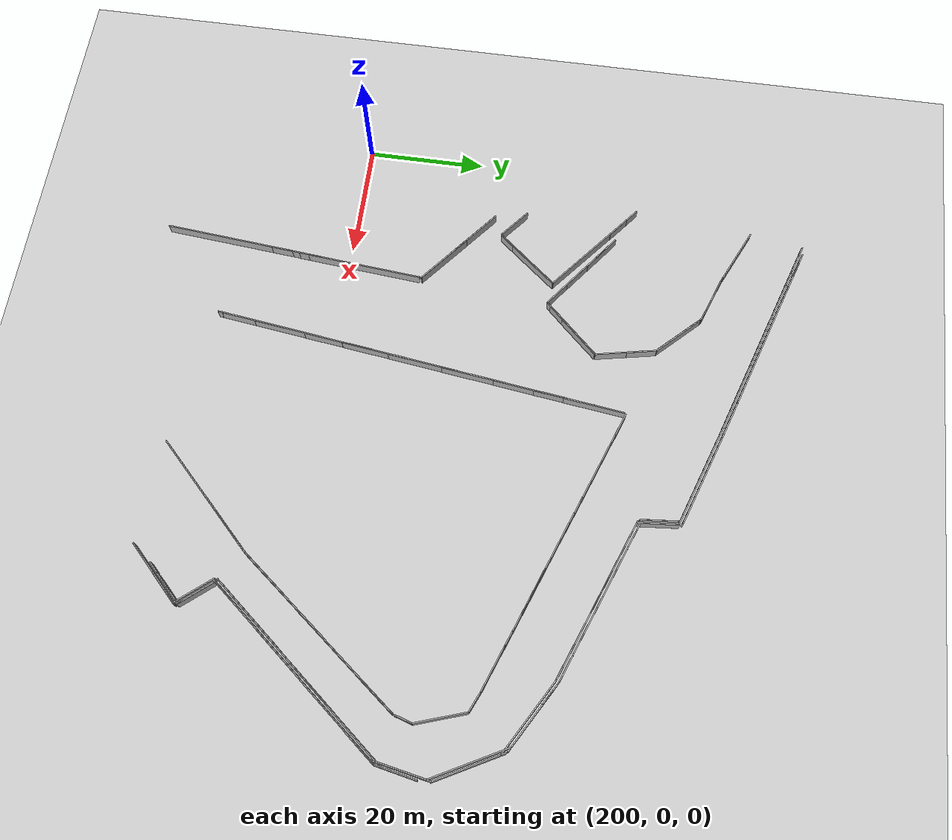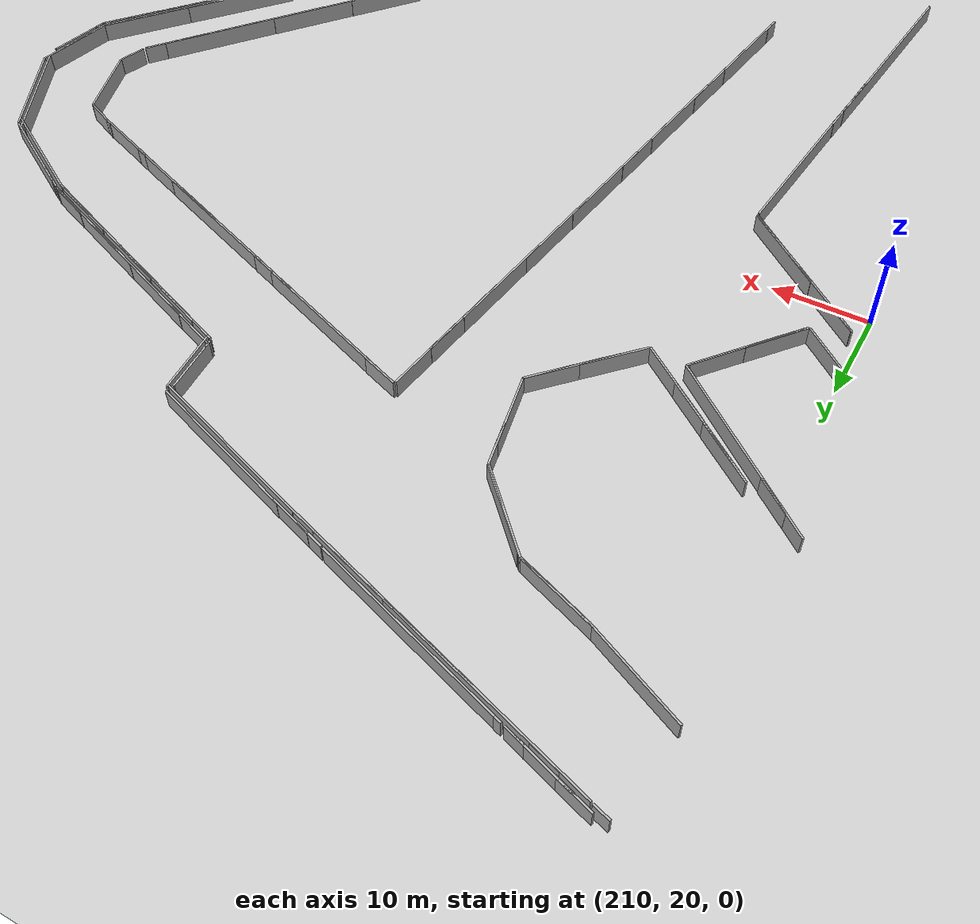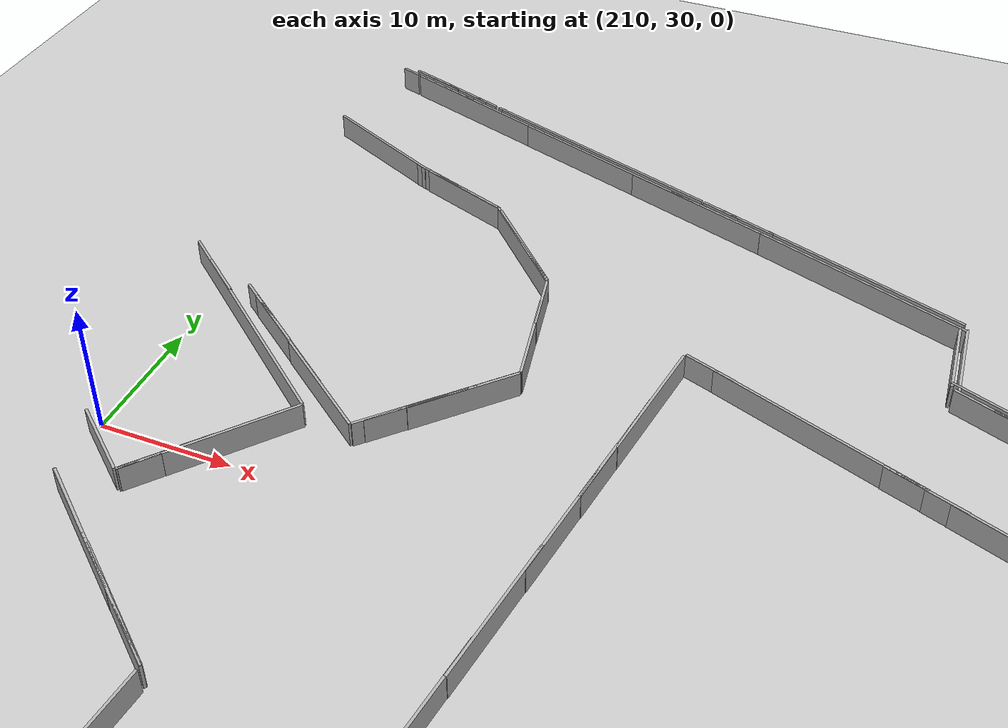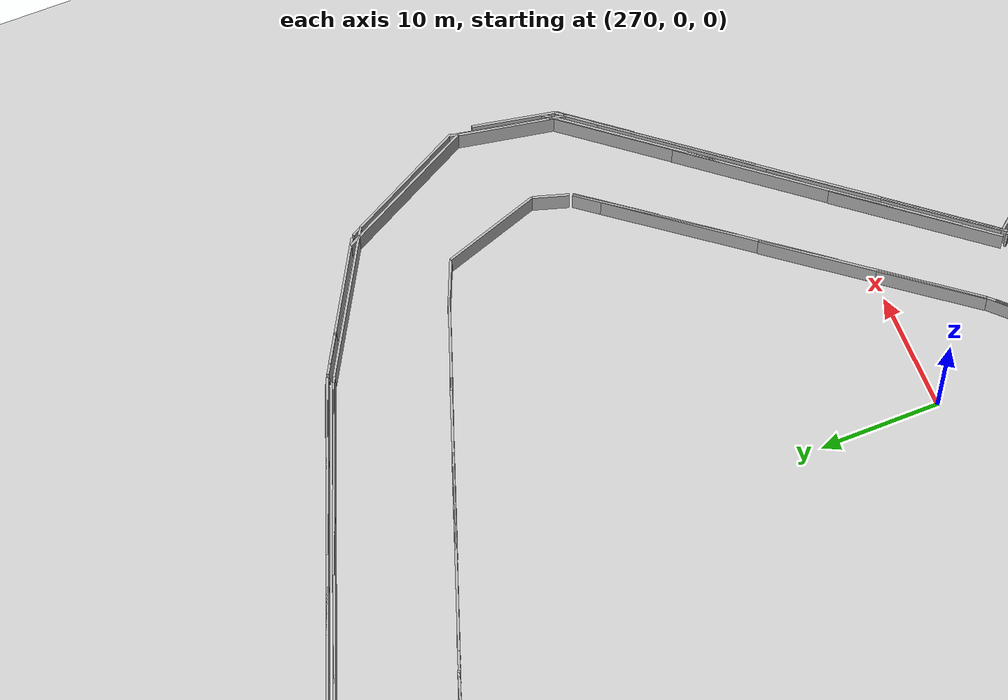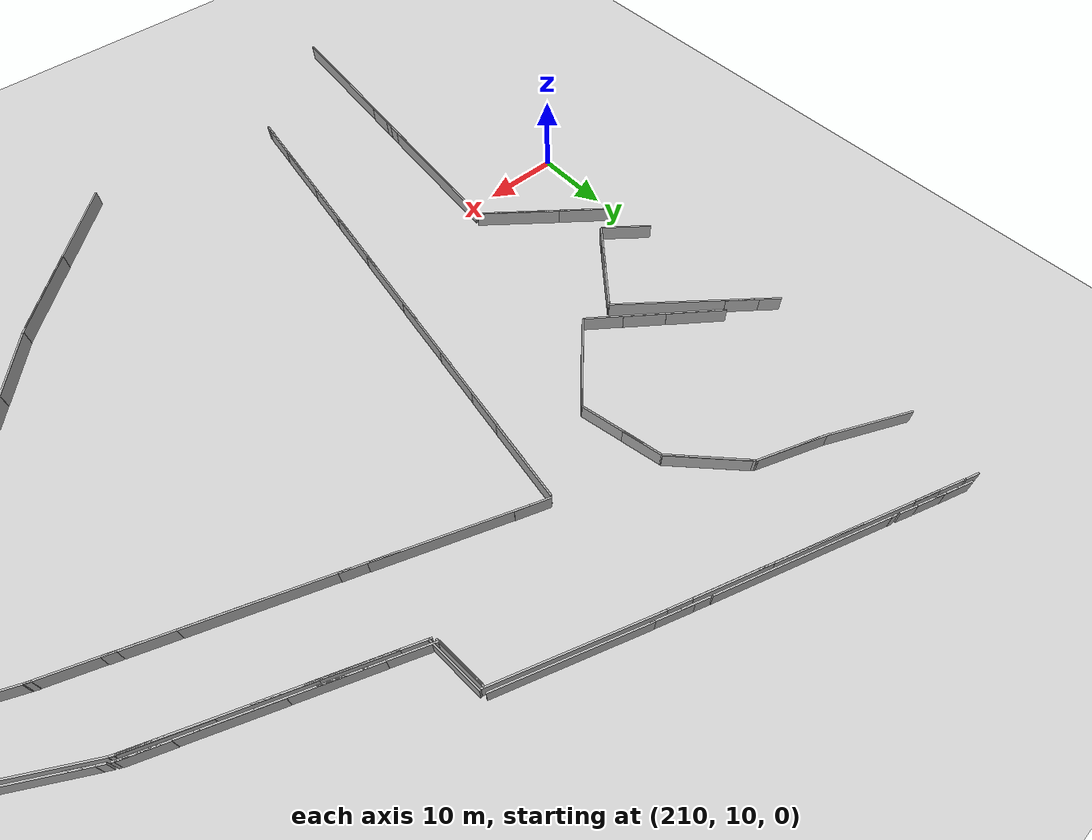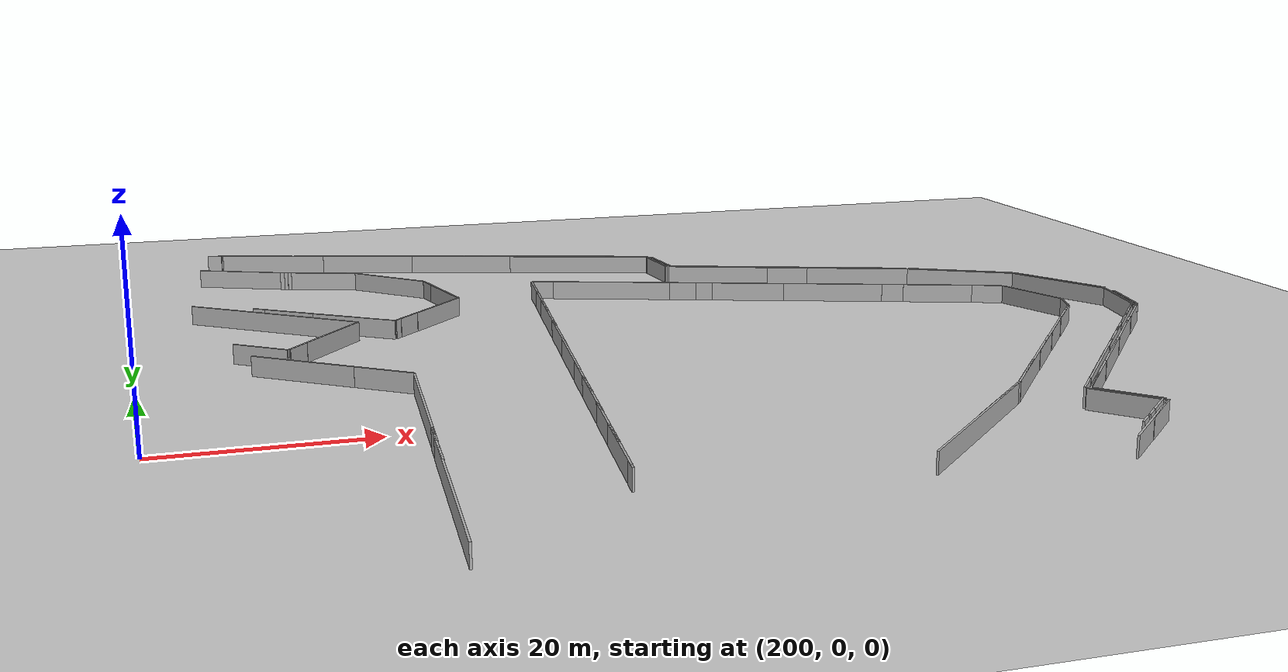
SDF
<sdf version="1.7">
 <world name="slam_world">
  <model name="ground_plane">
   <static>1</static>
   <link name="link">
    <collision name="collision">
     <geometry><plane><normal>0 0 1</normal><size>100 100</size></plane></geometry>
    </collision>
    <visual name="visual">
     <geometry><plane><normal>0 0 1</normal><size>100 100</size></plane></geometry>
     <material>
      <ambient>0.8 0.8 0.8 1</ambient>
      <diffuse>0.8 0.8 0.8 1</diffuse>
      <specular>0.8 0.8 0.8 1</specular>
     </material>
    </visual>
   </link>
  </model>
  <model name="wall_15">
   <static>1</static>
   <pose>253.476 62.9 1 0 0 -0.331017</pose>
   <link name="link">
    <collision name="collision"><geometry><box><size>18.7689 0.2 2</size></box></geometry></collision>
    <visual name="visual">
     <geometry><box><size>18.7689 0.2 2</size></box></geometry>
     <material><ambient>0.5 0.5 0.5 1</ambient><diffuse>0.7 0.7 0.7 1</diffuse></material>
    </visual>
   </link>
  </model>
  <model name="wall_22">
   <static>1</static>
   <pose>267.626 -15.625 1 0 -0 0.785398</pose>
   <link name="link">
    <collision name="collision"><geometry><box><size>22.8395 0.2 2</size></box></geometry></collision>
    <visual name="visual">
     <geometry><box><size>22.8395 0.2 2</size></box></geometry>
     <material><ambient>0.5 0.5 0.5 1</ambient><diffuse>0.7 0.7 0.7 1</diffuse></material>
    </visual>
   </link>
  </model>
  <model name="wall_27">
   <static>1</static>
   <pose>298.151 10.8 1 0 -0 0.889595</pose>
   <link name="link">
    <collision name="collision"><geometry><box><size>21.7555 0.2 2</size></box></geometry></collision>
    <visual name="visual">
     <geometry><box><size>21.7555 0.2 2</size></box></geometry>
     <material><ambient>0.5 0.5 0.5 1</ambient><diffuse>0.7 0.7 0.7 1</diffuse></material>
    </visual>
   </link>
  </model>
  <model name="wall_38">
   <static>1</static>
   <pose>214.651 41.75 1 0 0 -0.682317</pose>
   <link name="link">
    <collision name="collision"><geometry><box><size>20.6155 0.2 2</size></box></geometry></collision>
    <visual name="visual">
     <geometry><box><size>20.6155 0.2 2</size></box></geometry>
     <material><ambient>0.5 0.5 0.5 1</ambient><diffuse>0.7 0.7 0.7 1</diffuse></material>
    </visual>
   </link>
  </model>
  <model name="wall_39">
   <static>1</static>
   <pose>281.976 0.35 1 0 -0 0.905735</pose>
   <link name="link">
    <collision name="collision"><geometry><box><size>18.5543 0.2 2</size></box></geometry></collision>
    <visual name="visual">
     <geometry><box><size>18.5543 0.2 2</size></box></geometry>
     <material><ambient>0.5 0.5 0.5 1</ambient><diffuse>0.7 0.7 0.7 1</diffuse></material>
    </visual>
   </link>
  </model>
  <model name="wall_40">
   <static>1</static>
   <pose>230.551 71.075 1 0 0 -0.316411</pose>
   <link name="link">
    <collision name="collision"><geometry><box><size>20.729 0.2 2</size></box></geometry></collision>
    <visual name="visual">
     <geometry><box><size>20.729 0.2 2</size></box></geometry>
     <material><ambient>0.5 0.5 0.5 1</ambient><diffuse>0.7 0.7 0.7 1</diffuse></material>
    </visual>
   </link>
  </model>
  <model name="wall_52">
   <static>1</static>
   <pose>254.151 63.225 1 0 0 -0.330217</pose>
   <link name="link">
    <collision name="collision"><geometry><box><size>16.8081 0.2 2</size></box></geometry></collision>
    <visual name="visual">
     <geometry><box><size>16.8081 0.2 2</size></box></geometry>
     <material><ambient>0.5 0.5 0.5 1</ambient><diffuse>0.7 0.7 0.7 1</diffuse></material>
    </visual>
   </link>
  </model>
  <model name="wall_55">
   <static>1</static>
   <pose>295.276 6.475 1 0 -0 0.888581</pose>
   <link name="link">
    <collision name="collision"><geometry><box><size>24.028 0.2 2</size></box></geometry></collision>
    <visual name="visual">
     <geometry><box><size>24.028 0.2 2</size></box></geometry>
     <material><ambient>0.5 0.5 0.5 1</ambient><diffuse>0.7 0.7 0.7 1</diffuse></material>
    </visual>
   </link>
  </model>
  <model name="wall_60">
   <static>1</static>
   <pose>221.651 -20.05 1 0 -0 1.4816</pose>
   <link name="link">
    <collision name="collision"><geometry><box><size>24.6982 0.2 2</size></box></geometry></collision>
    <visual name="visual">
     <geometry><box><size>24.6982 0.2 2</size></box></geometry>
     <material><ambient>0.5 0.5 0.5 1</ambient><diffuse>0.7 0.7 0.7 1</diffuse></material>
    </visual>
   </link>
  </model>
  <model name="wall_65">
   <static>1</static>
   <pose>280.926 46.4 1 0 0 -0.366185</pose>
   <link name="link">
    <collision name="collision"><geometry><box><size>18.1536 0.2 2</size></box></geometry></collision>
    <visual name="visual">
     <geometry><box><size>18.1536 0.2 2</size></box></geometry>
     <material><ambient>0.5 0.5 0.5 1</ambient><diffuse>0.7 0.7 0.7 1</diffuse></material>
    </visual>
   </link>
  </model>
  <model name="wall_67">
   <static>1</static>
   <pose>222.651 73.15 1 0 0 -0.31621</pose>
   <link name="link">
    <collision name="collision"><geometry><box><size>22.832 0.2 2</size></box></geometry></collision>
    <visual name="visual">
     <geometry><box><size>22.832 0.2 2</size></box></geometry>
     <material><ambient>0.5 0.5 0.5 1</ambient><diffuse>0.7 0.7 0.7 1</diffuse></material>
    </visual>
   </link>
  </model>
  <model name="wall_76">
   <static>1</static>
   <pose>287.201 -3.425 1 0 -0 0.889813</pose>
   <link name="link">
    <collision name="collision"><geometry><box><size>20.0141 0.2 2</size></box></geometry></collision>
    <visual name="visual">
     <geometry><box><size>20.0141 0.2 2</size></box></geometry>
     <material><ambient>0.5 0.5 0.5 1</ambient><diffuse>0.7 0.7 0.7 1</diffuse></material>
    </visual>
   </link>
  </model>
  <model name="wall_82">
   <static>1</static>
   <pose>223.726 2.675 1 0 -0 1.48197</pose>
   <link name="link">
    <collision name="collision"><geometry><box><size>19.7278 0.2 2</size></box></geometry></collision>
    <visual name="visual">
     <geometry><box><size>19.7278 0.2 2</size></box></geometry>
     <material><ambient>0.5 0.5 0.5 1</ambient><diffuse>0.7 0.7 0.7 1</diffuse></material>
    </visual>
   </link>
  </model>
  <model name="wall_84">
   <static>1</static>
   <pose>254.951 46.15 1 0 0 -0.351817</pose>
   <link name="link">
    <collision name="collision"><geometry><box><size>16.8309 0.2 2</size></box></geometry></collision>
    <visual name="visual">
     <geometry><box><size>16.8309 0.2 2</size></box></geometry>
     <material><ambient>0.5 0.5 0.5 1</ambient><diffuse>0.7 0.7 0.7 1</diffuse></material>
    </visual>
   </link>
  </model>
  <model name="wall_90">
   <static>1</static>
   <pose>303.276 32 1 0 0 -1.08108</pose>
   <link name="link">
    <collision name="collision"><geometry><box><size>12.0118 0.2 2</size></box></geometry></collision>
    <visual name="visual">
     <geometry><box><size>12.0118 0.2 2</size></box></geometry>
     <material><ambient>0.5 0.5 0.5 1</ambient><diffuse>0.7 0.7 0.7 1</diffuse></material>
    </visual>
   </link>
  </model>
  <model name="wall_96">
   <static>1</static>
   <pose>218.326 40.925 1 0 0 -0.648109</pose>
   <link name="link">
    <collision name="collision"><geometry><box><size>10.8501 0.2 2</size></box></geometry></collision>
    <visual name="visual">
     <geometry><box><size>10.8501 0.2 2</size></box></geometry>
     <material><ambient>0.5 0.5 0.5 1</ambient><diffuse>0.7 0.7 0.7 1</diffuse></material>
    </visual>
   </link>
  </model>
  <model name="wall_103">
   <static>1</static>
   <pose>272.051 39.825 1 0 0 -0.351636</pose>
   <link name="link">
    <collision name="collision"><geometry><box><size>16.4037 0.2 2</size></box></geometry></collision>
    <visual name="visual">
     <geometry><box><size>16.4037 0.2 2</size></box></geometry>
     <material><ambient>0.5 0.5 0.5 1</ambient><diffuse>0.7 0.7 0.7 1</diffuse></material>
    </visual>
   </link>
  </model>
  <model name="wall_104">
   <static>1</static>
   <pose>282.451 46.375 1 0 0 -0.365018</pose>
   <link name="link">
    <collision name="collision"><geometry><box><size>14.9874 0.2 2</size></box></geometry></collision>
    <visual name="visual">
     <geometry><box><size>14.9874 0.2 2</size></box></geometry>
     <material><ambient>0.5 0.5 0.5 1</ambient><diffuse>0.7 0.7 0.7 1</diffuse></material>
    </visual>
   </link>
  </model>
  <model name="wall_106">
   <static>1</static>
   <pose>217.801 18.35 1 0 0 -0.680941</pose>
   <link name="link">
    <collision name="collision"><geometry><box><size>17.6324 0.2 2</size></box></geometry></collision>
    <visual name="visual">
     <geometry><box><size>17.6324 0.2 2</size></box></geometry>
     <material><ambient>0.5 0.5 0.5 1</ambient><diffuse>0.7 0.7 0.7 1</diffuse></material>
    </visual>
   </link>
  </model>
  <model name="wall_119">
   <static>1</static>
   <pose>289.751 10.2 1 0 -0 0.905694</pose>
   <link name="link">
    <collision name="collision"><geometry><box><size>19.4445 0.2 2</size></box></geometry></collision>
    <visual name="visual">
     <geometry><box><size>19.4445 0.2 2</size></box></geometry>
     <material><ambient>0.5 0.5 0.5 1</ambient><diffuse>0.7 0.7 0.7 1</diffuse></material>
    </visual>
   </link>
  </model>
  <model name="wall_125">
   <static>1</static>
   <pose>267.651 51.975 1 0 0 -0.364959</pose>
   <link name="link">
    <collision name="collision"><geometry><box><size>11.3474 0.2 2</size></box></geometry></collision>
    <visual name="visual">
     <geometry><box><size>11.3474 0.2 2</size></box></geometry>
     <material><ambient>0.5 0.5 0.5 1</ambient><diffuse>0.7 0.7 0.7 1</diffuse></material>
    </visual>
   </link>
  </model>
  <model name="wall_129">
   <static>1</static>
   <pose>244.051 44.55 1 0 -0 1.44525</pose>
   <link name="link">
    <collision name="collision"><geometry><box><size>10.3817 0.2 2</size></box></geometry></collision>
    <visual name="visual">
     <geometry><box><size>10.3817 0.2 2</size></box></geometry>
     <material><ambient>0.5 0.5 0.5 1</ambient><diffuse>0.7 0.7 0.7 1</diffuse></material>
    </visual>
   </link>
  </model>
  <model name="wall_136">
   <static>1</static>
   <pose>285.226 -5.025 1 0 -0 0.888986</pose>
   <link name="link">
    <collision name="collision"><geometry><box><size>14.3605 0.2 2</size></box></geometry></collision>
    <visual name="visual">
     <geometry><box><size>14.3605 0.2 2</size></box></geometry>
     <material><ambient>0.5 0.5 0.5 1</ambient><diffuse>0.7 0.7 0.7 1</diffuse></material>
    </visual>
   </link>
  </model>
  <model name="wall_146">
   <static>1</static>
   <pose>295.401 40.275 1 0 0 -0.522984</pose>
   <link name="link">
    <collision name="collision"><geometry><box><size>11.3121 0.2 2</size></box></geometry></collision>
    <visual name="visual">
     <geometry><box><size>11.3121 0.2 2</size></box></geometry>
     <material><ambient>0.5 0.5 0.5 1</ambient><diffuse>0.7 0.7 0.7 1</diffuse></material>
    </visual>
   </link>
  </model>
  <model name="wall_161">
   <static>1</static>
   <pose>275.001 49.2 1 0 0 -0.364239</pose>
   <link name="link">
    <collision name="collision"><geometry><box><size>17.1234 0.2 2</size></box></geometry></collision>
    <visual name="visual">
     <geometry><box><size>17.1234 0.2 2</size></box></geometry>
     <material><ambient>0.5 0.5 0.5 1</ambient><diffuse>0.7 0.7 0.7 1</diffuse></material>
    </visual>
   </link>
  </model>
  <model name="wall_165">
   <static>1</static>
   <pose>302.726 32 1 0 0 -1.0833</pose>
   <link name="link">
    <collision name="collision"><geometry><box><size>13.1295 0.2 2</size></box></geometry></collision>
    <visual name="visual">
     <geometry><box><size>13.1295 0.2 2</size></box></geometry>
     <material><ambient>0.5 0.5 0.5 1</ambient><diffuse>0.7 0.7 0.7 1</diffuse></material>
    </visual>
   </link>
  </model>
  <model name="wall_175">
   <static>1</static>
   <pose>271.926 -11.275 1 0 -0 0.785398</pose>
   <link name="link">
    <collision name="collision"><geometry><box><size>12.0915 0.2 2</size></box></geometry></collision>
    <visual name="visual">
     <geometry><box><size>12.0915 0.2 2</size></box></geometry>
     <material><ambient>0.5 0.5 0.5 1</ambient><diffuse>0.7 0.7 0.7 1</diffuse></material>
    </visual>
   </link>
  </model>
  <model name="wall_178">
   <static>1</static>
   <pose>242.626 33.625 1 0 -0 1.44494</pose>
   <link name="link">
    <collision name="collision"><geometry><box><size>12.3477 0.2 2</size></box></geometry></collision>
    <visual name="visual">
     <geometry><box><size>12.3477 0.2 2</size></box></geometry>
     <material><ambient>0.5 0.5 0.5 1</ambient><diffuse>0.7 0.7 0.7 1</diffuse></material>
    </visual>
   </link>
  </model>
  <model name="wall_183">
   <static>1</static>
   <pose>241.401 24.225 1 0 -0 1.44477</pose>
   <link name="link">
    <collision name="collision"><geometry><box><size>11.1383 0.2 2</size></box></geometry></collision>
    <visual name="visual">
     <geometry><box><size>11.1383 0.2 2</size></box></geometry>
     <material><ambient>0.5 0.5 0.5 1</ambient><diffuse>0.7 0.7 0.7 1</diffuse></material>
    </visual>
   </link>
  </model>
  <model name="wall_185">
   <static>1</static>
   <pose>281.201 -20.6 1 0 -0 0.785398</pose>
   <link name="link">
    <collision name="collision"><geometry><box><size>12.1622 0.2 2</size></box></geometry></collision>
    <visual name="visual">
     <geometry><box><size>12.1622 0.2 2</size></box></geometry>
     <material><ambient>0.5 0.5 0.5 1</ambient><diffuse>0.7 0.7 0.7 1</diffuse></material>
    </visual>
   </link>
  </model>
  <model name="wall_193">
   <static>1</static>
   <pose>238.351 0.875 1 0 -0 1.44488</pose>
   <link name="link">
    <collision name="collision"><geometry><box><size>11.9446 0.2 2</size></box></geometry></collision>
    <visual name="visual">
     <geometry><box><size>11.9446 0.2 2</size></box></geometry>
     <material><ambient>0.5 0.5 0.5 1</ambient><diffuse>0.7 0.7 0.7 1</diffuse></material>
    </visual>
   </link>
  </model>
  <model name="wall_194">
   <static>1</static>
   <pose>240.276 15.625 1 0 -0 1.44494</pose>
   <link name="link">
    <collision name="collision"><geometry><box><size>12.3477 0.2 2</size></box></geometry></collision>
    <visual name="visual">
     <geometry><box><size>12.3477 0.2 2</size></box></geometry>
     <material><ambient>0.5 0.5 0.5 1</ambient><diffuse>0.7 0.7 0.7 1</diffuse></material>
    </visual>
   </link>
  </model>
  <model name="wall_197">
   <static>1</static>
   <pose>231.001 39.575 1 0 -0 0.819441</pose>
   <link name="link">
    <collision name="collision"><geometry><box><size>11.4264 0.2 2</size></box></geometry></collision>
    <visual name="visual">
     <geometry><box><size>11.4264 0.2 2</size></box></geometry>
     <material><ambient>0.5 0.5 0.5 1</ambient><diffuse>0.7 0.7 0.7 1</diffuse></material>
    </visual>
   </link>
  </model>
  <model name="wall_202">
   <static>1</static>
   <pose>229.426 57.35 1 0 0 -0.803064</pose>
   <link name="link">
    <collision name="collision"><geometry><box><size>10.0071 0.2 2</size></box></geometry></collision>
    <visual name="visual">
     <geometry><box><size>10.0071 0.2 2</size></box></geometry>
     <material><ambient>0.5 0.5 0.5 1</ambient><diffuse>0.7 0.7 0.7 1</diffuse></material>
    </visual>
   </link>
  </model>
  <model name="wall_211">
   <static>1</static>
   <pose>268.126 51.25 1 0 0 -0.363226</pose>
   <link name="link">
    <collision name="collision"><geometry><box><size>11.8213 0.2 2</size></box></geometry></collision>
    <visual name="visual">
     <geometry><box><size>11.8213 0.2 2</size></box></geometry>
     <material><ambient>0.5 0.5 0.5 1</ambient><diffuse>0.7 0.7 0.7 1</diffuse></material>
    </visual>
   </link>
  </model>
  <model name="wall_227">
   <static>1</static>
   <pose>219.576 31.425 1 0 -0 0.887234</pose>
   <link name="link">
    <collision name="collision"><geometry><box><size>9.73781 0.2 2</size></box></geometry></collision>
    <visual name="visual">
     <geometry><box><size>9.73781 0.2 2</size></box></geometry>
     <material><ambient>0.5 0.5 0.5 1</ambient><diffuse>0.7 0.7 0.7 1</diffuse></material>
    </visual>
   </link>
  </model>
  <model name="wall_234">
   <static>1</static>
   <pose>294.926 39.95 1 0 0 -0.52364</pose>
   <link name="link">
    <collision name="collision"><geometry><box><size>13.799 0.2 2</size></box></geometry></collision>
    <visual name="visual">
     <geometry><box><size>13.799 0.2 2</size></box></geometry>
     <material><ambient>0.5 0.5 0.5 1</ambient><diffuse>0.7 0.7 0.7 1</diffuse></material>
    </visual>
   </link>
  </model>
  <model name="wall_238">
   <static>1</static>
   <pose>305.076 22.1 1 0 -0 1.38042</pose>
   <link name="link">
    <collision name="collision"><geometry><box><size>9.77663 0.2 2</size></box></geometry></collision>
    <visual name="visual">
     <geometry><box><size>9.77663 0.2 2</size></box></geometry>
     <material><ambient>0.5 0.5 0.5 1</ambient><diffuse>0.7 0.7 0.7 1</diffuse></material>
    </visual>
   </link>
  </model>
  <model name="wall_239">
   <static>1</static>
   <pose>221.701 62.525 1 0 0 -0.352153</pose>
   <link name="link">
    <collision name="collision"><geometry><box><size>8.84265 0.2 2</size></box></geometry></collision>
    <visual name="visual">
     <geometry><box><size>8.84265 0.2 2</size></box></geometry>
     <material><ambient>0.5 0.5 0.5 1</ambient><diffuse>0.7 0.7 0.7 1</diffuse></material>
    </visual>
   </link>
  </model>
  <model name="wall_241">
   <static>1</static>
   <pose>236.401 -14.05 1 0 -0 1.44533</pose>
   <link name="link">
    <collision name="collision"><geometry><box><size>11.1879 0.2 2</size></box></geometry></collision>
    <visual name="visual">
     <geometry><box><size>11.1879 0.2 2</size></box></geometry>
     <material><ambient>0.5 0.5 0.5 1</ambient><diffuse>0.7 0.7 0.7 1</diffuse></material>
    </visual>
   </link>
  </model>
  <model name="wall_244">
   <static>1</static>
   <pose>222.576 37.675 1 0 0 -0.646591</pose>
   <link name="link">
    <collision name="collision"><geometry><box><size>9.71005 0.2 2</size></box></geometry></collision>
    <visual name="visual">
     <geometry><box><size>9.71005 0.2 2</size></box></geometry>
     <material><ambient>0.5 0.5 0.5 1</ambient><diffuse>0.7 0.7 0.7 1</diffuse></material>
    </visual>
   </link>
  </model>
  <model name="wall_247">
   <static>1</static>
   <pose>283.251 -18.6 1 0 -0 0.785398</pose>
   <link name="link">
    <collision name="collision"><geometry><box><size>6.36396 0.2 2</size></box></geometry></collision>
    <visual name="visual">
     <geometry><box><size>6.36396 0.2 2</size></box></geometry>
     <material><ambient>0.5 0.5 0.5 1</ambient><diffuse>0.7 0.7 0.7 1</diffuse></material>
    </visual>
   </link>
  </model>
  <model name="wall_254">
   <static>1</static>
   <pose>262.126 56.825 1 0 0 -1.4844</pose>
   <link name="link">
    <collision name="collision"><geometry><box><size>6.37377 0.2 2</size></box></geometry></collision>
    <visual name="visual">
     <geometry><box><size>6.37377 0.2 2</size></box></geometry>
     <material><ambient>0.5 0.5 0.5 1</ambient><diffuse>0.7 0.7 0.7 1</diffuse></material>
    </visual>
   </link>
  </model>
  <model name="wall_259">
   <static>1</static>
   <pose>295.051 16.9 1 0 -0 0.907241</pose>
   <link name="link">
    <collision name="collision"><geometry><box><size>6.9814 0.2 2</size></box></geometry></collision>
    <visual name="visual">
     <geometry><box><size>6.9814 0.2 2</size></box></geometry>
     <material><ambient>0.5 0.5 0.5 1</ambient><diffuse>0.7 0.7 0.7 1</diffuse></material>
    </visual>
   </link>
  </model>
  <model name="wall_262">
   <static>1</static>
   <pose>288.626 33.675 1 0 0 -0.353612</pose>
   <link name="link">
    <collision name="collision"><geometry><box><size>7.94135 0.2 2</size></box></geometry></collision>
    <visual name="visual">
     <geometry><box><size>7.94135 0.2 2</size></box></geometry>
     <material><ambient>0.5 0.5 0.5 1</ambient><diffuse>0.7 0.7 0.7 1</diffuse></material>
    </visual>
   </link>
  </model>
  <model name="wall_266">
   <static>1</static>
   <pose>213.026 76.85 1 0 0 -0.308651</pose>
   <link name="link">
    <collision name="collision"><geometry><box><size>3.62112 0.2 2</size></box></geometry></collision>
    <visual name="visual">
     <geometry><box><size>3.62112 0.2 2</size></box></geometry>
     <material><ambient>0.5 0.5 0.5 1</ambient><diffuse>0.7 0.7 0.7 1</diffuse></material>
    </visual>
   </link>
  </model>
  <model name="wall_268">
   <static>1</static>
   <pose>239.151 7.025 1 0 -0 1.44477</pose>
   <link name="link">
    <collision name="collision"><geometry><box><size>11.1383 0.2 2</size></box></geometry></collision>
    <visual name="visual">
     <geometry><box><size>11.1383 0.2 2</size></box></geometry>
     <material><ambient>0.5 0.5 0.5 1</ambient><diffuse>0.7 0.7 0.7 1</diffuse></material>
    </visual>
   </link>
  </model>
  <model name="wall_276">
   <static>1</static>
   <pose>213.501 65.975 1 0 0 -0.43467</pose>
   <link name="link">
    <collision name="collision"><geometry><box><size>10.8047 0.2 2</size></box></geometry></collision>
    <visual name="visual">
     <geometry><box><size>10.8047 0.2 2</size></box></geometry>
     <material><ambient>0.5 0.5 0.5 1</ambient><diffuse>0.7 0.7 0.7 1</diffuse></material>
    </visual>
   </link>
  </model>
  <model name="wall_283">
   <static>1</static>
   <pose>296.826 26.9 1 0 0 -1.2435</pose>
   <link name="link">
    <collision name="collision"><geometry><box><size>8.55409 0.2 2</size></box></geometry></collision>
    <visual name="visual">
     <geometry><box><size>8.55409 0.2 2</size></box></geometry>
     <material><ambient>0.5 0.5 0.5 1</ambient><diffuse>0.7 0.7 0.7 1</diffuse></material>
    </visual>
   </link>
  </model>
  <model name="wall_288">
   <static>1</static>
   <pose>290.426 1.325 1 0 -0 0.888581</pose>
   <link name="link">
    <collision name="collision"><geometry><box><size>24.028 0.2 2</size></box></geometry></collision>
    <visual name="visual">
     <geometry><box><size>24.028 0.2 2</size></box></geometry>
     <material><ambient>0.5 0.5 0.5 1</ambient><diffuse>0.7 0.7 0.7 1</diffuse></material>
    </visual>
   </link>
  </model>
  <model name="wall_289">
   <static>1</static>
   <pose>215.301 20.35 1 0 0 -0.678885</pose>
   <link name="link">
    <collision name="collision"><geometry><box><size>11.3071 0.2 2</size></box></geometry></collision>
    <visual name="visual">
     <geometry><box><size>11.3071 0.2 2</size></box></geometry>
     <material><ambient>0.5 0.5 0.5 1</ambient><diffuse>0.7 0.7 0.7 1</diffuse></material>
    </visual>
   </link>
  </model>
  <model name="wall_296">
   <static>1</static>
   <pose>283.976 -17.15 1 0 -0 0.794407</pose>
   <link name="link">
    <collision name="collision"><geometry><box><size>3.9246 0.2 2</size></box></geometry></collision>
    <visual name="visual">
     <geometry><box><size>3.9246 0.2 2</size></box></geometry>
     <material><ambient>0.5 0.5 0.5 1</ambient><diffuse>0.7 0.7 0.7 1</diffuse></material>
    </visual>
   </link>
  </model>
  <model name="wall_297">
   <static>1</static>
   <pose>244.476 66.5 1 0 0 -0.325118</pose>
   <link name="link">
    <collision name="collision"><geometry><box><size>4.69601 0.2 2</size></box></geometry></collision>
    <visual name="visual">
     <geometry><box><size>4.69601 0.2 2</size></box></geometry>
     <material><ambient>0.5 0.5 0.5 1</ambient><diffuse>0.7 0.7 0.7 1</diffuse></material>
    </visual>
   </link>
  </model>
  <model name="wall_306">
   <static>1</static>
   <pose>237.201 -7.925 1 0 -0 1.44488</pose>
   <link name="link">
    <collision name="collision"><geometry><box><size>11.9446 0.2 2</size></box></geometry></collision>
    <visual name="visual">
     <geometry><box><size>11.9446 0.2 2</size></box></geometry>
     <material><ambient>0.5 0.5 0.5 1</ambient><diffuse>0.7 0.7 0.7 1</diffuse></material>
    </visual>
   </link>
  </model>
  <model name="wall_308">
   <static>1</static>
   <pose>234.101 47.675 1 0 0 -1.36721</pose>
   <link name="link">
    <collision name="collision"><geometry><box><size>7.91344 0.2 2</size></box></geometry></collision>
    <visual name="visual">
     <geometry><box><size>7.91344 0.2 2</size></box></geometry>
     <material><ambient>0.5 0.5 0.5 1</ambient><diffuse>0.7 0.7 0.7 1</diffuse></material>
    </visual>
   </link>
  </model>
  <model name="wall_310">
   <static>1</static>
   <pose>232.051 40.65 1 0 -0 0.819283</pose>
   <link name="link">
    <collision name="collision"><geometry><box><size>8.34865 0.2 2</size></box></geometry></collision>
    <visual name="visual">
     <geometry><box><size>8.34865 0.2 2</size></box></geometry>
     <material><ambient>0.5 0.5 0.5 1</ambient><diffuse>0.7 0.7 0.7 1</diffuse></material>
    </visual>
   </link>
  </model>
  <model name="wall_313">
   <static>1</static>
   <pose>283.376 -13.4 1 0 0 -0.876058</pose>
   <link name="link">
    <collision name="collision"><geometry><box><size>6.63871 0.2 2</size></box></geometry></collision>
    <visual name="visual">
     <geometry><box><size>6.63871 0.2 2</size></box></geometry>
     <material><ambient>0.5 0.5 0.5 1</ambient><diffuse>0.7 0.7 0.7 1</diffuse></material>
    </visual>
   </link>
  </model>
  <model name="wall_315">
   <static>1</static>
   <pose>216.726 75.625 1 0 0 -0.321751</pose>
   <link name="link">
    <collision name="collision"><geometry><box><size>4.5853 0.2 2</size></box></geometry></collision>
    <visual name="visual">
     <geometry><box><size>4.5853 0.2 2</size></box></geometry>
     <material><ambient>0.5 0.5 0.5 1</ambient><diffuse>0.7 0.7 0.7 1</diffuse></material>
    </visual>
   </link>
  </model>
  <model name="wall_317">
   <static>1</static>
   <pose>262.651 56.625 1 0 0 -1.48343</pose>
   <link name="link">
    <collision name="collision"><geometry><box><size>6.87623 0.2 2</size></box></geometry></collision>
    <visual name="visual">
     <geometry><box><size>6.87623 0.2 2</size></box></geometry>
     <material><ambient>0.5 0.5 0.5 1</ambient><diffuse>0.7 0.7 0.7 1</diffuse></material>
    </visual>
   </link>
  </model>
  <model name="wall_334">
   <static>1</static>
   <pose>305.426 21.45 1 0 -0 1.37481</pose>
   <link name="link">
    <collision name="collision"><geometry><box><size>6.93271 0.2 2</size></box></geometry></collision>
    <visual name="visual">
     <geometry><box><size>6.93271 0.2 2</size></box></geometry>
     <material><ambient>0.5 0.5 0.5 1</ambient><diffuse>0.7 0.7 0.7 1</diffuse></material>
    </visual>
   </link>
  </model>
  <model name="wall_341">
   <static>1</static>
   <pose>282.826 -13.5 1 0 0 -0.876058</pose>
   <link name="link">
    <collision name="collision"><geometry><box><size>6.63871 0.2 2</size></box></geometry></collision>
    <visual name="visual">
     <geometry><box><size>6.63871 0.2 2</size></box></geometry>
     <material><ambient>0.5 0.5 0.5 1</ambient><diffuse>0.7 0.7 0.7 1</diffuse></material>
    </visual>
   </link>
  </model>
  <model name="wall_342">
   <static>1</static>
   <pose>282.251 -18.875 1 0 -0 0.797743</pose>
   <link name="link">
    <collision name="collision"><geometry><box><size>2.864 0.2 2</size></box></geometry></collision>
    <visual name="visual">
     <geometry><box><size>2.864 0.2 2</size></box></geometry>
     <material><ambient>0.5 0.5 0.5 1</ambient><diffuse>0.7 0.7 0.7 1</diffuse></material>
    </visual>
   </link>
  </model>
  <model name="wall_348">
   <static>1</static>
   <pose>218.551 30.2 1 0 -0 0.88848</pose>
   <link name="link">
    <collision name="collision"><geometry><box><size>12.3693 0.2 2</size></box></geometry></collision>
    <visual name="visual">
     <geometry><box><size>12.3693 0.2 2</size></box></geometry>
     <material><ambient>0.5 0.5 0.5 1</ambient><diffuse>0.7 0.7 0.7 1</diffuse></material>
    </visual>
   </link>
  </model>
  <model name="wall_360">
   <static>1</static>
   <pose>218.926 74.9 1 0 0 -0.32905</pose>
   <link name="link">
    <collision name="collision"><geometry><box><size>2.16622 0.2 2</size></box></geometry></collision>
    <visual name="visual">
     <geometry><box><size>2.16622 0.2 2</size></box></geometry>
     <material><ambient>0.5 0.5 0.5 1</ambient><diffuse>0.7 0.7 0.7 1</diffuse></material>
    </visual>
   </link>
  </model>
  <model name="wall_380">
   <static>1</static>
   <pose>299.451 11.6 1 0 -0 0.890495</pose>
   <link name="link">
    <collision name="collision"><geometry><box><size>16.8514 0.2 2</size></box></geometry></collision>
    <visual name="visual">
     <geometry><box><size>16.8514 0.2 2</size></box></geometry>
     <material><ambient>0.5 0.5 0.5 1</ambient><diffuse>0.7 0.7 0.7 1</diffuse></material>
    </visual>
   </link>
  </model>
  <model name="wall_382">
   <static>1</static>
   <pose>278.926 -3.475 1 0 -0 0.903888</pose>
   <link name="link">
    <collision name="collision"><geometry><box><size>8.97246 0.2 2</size></box></geometry></collision>
    <visual name="visual">
     <geometry><box><size>8.97246 0.2 2</size></box></geometry>
     <material><ambient>0.5 0.5 0.5 1</ambient><diffuse>0.7 0.7 0.7 1</diffuse></material>
    </visual>
   </link>
  </model>
  <model name="wall_391">
   <static>1</static>
   <pose>232.826 69.8 1 0 0 -0.316018</pose>
   <link name="link">
    <collision name="collision"><geometry><box><size>19.306 0.2 2</size></box></geometry></collision>
    <visual name="visual">
     <geometry><box><size>19.306 0.2 2</size></box></geometry>
     <material><ambient>0.5 0.5 0.5 1</ambient><diffuse>0.7 0.7 0.7 1</diffuse></material>
    </visual>
   </link>
  </model>
  <model name="wall_398">
   <static>1</static>
   <pose>278.401 37.475 1 0 0 -0.350982</pose>
   <link name="link">
    <collision name="collision"><geometry><box><size>13.5245 0.2 2</size></box></geometry></collision>
    <visual name="visual">
     <geometry><box><size>13.5245 0.2 2</size></box></geometry>
     <material><ambient>0.5 0.5 0.5 1</ambient><diffuse>0.7 0.7 0.7 1</diffuse></material>
    </visual>
   </link>
  </model>
  <model name="wall_399">
   <static>1</static>
   <pose>229.551 57.3 1 0 0 -0.800322</pose>
   <link name="link">
    <collision name="collision"><geometry><box><size>9.47629 0.2 2</size></box></geometry></collision>
    <visual name="visual">
     <geometry><box><size>9.47629 0.2 2</size></box></geometry>
     <material><ambient>0.5 0.5 0.5 1</ambient><diffuse>0.7 0.7 0.7 1</diffuse></material>
    </visual>
   </link>
  </model>
  <model name="wall_408">
   <static>1</static>
   <pose>243.401 39.55 1 0 -0 1.44525</pose>
   <link name="link">
    <collision name="collision"><geometry><box><size>10.3817 0.2 2</size></box></geometry></collision>
    <visual name="visual">
     <geometry><box><size>10.3817 0.2 2</size></box></geometry>
     <material><ambient>0.5 0.5 0.5 1</ambient><diffuse>0.7 0.7 0.7 1</diffuse></material>
    </visual>
   </link>
  </model>
  <model name="wall_418">
   <static>1</static>
   <pose>283.376 -13.35 1 0 0 -0.876058</pose>
   <link name="link">
    <collision name="collision"><geometry><box><size>6.63871 0.2 2</size></box></geometry></collision>
    <visual name="visual">
     <geometry><box><size>6.63871 0.2 2</size></box></geometry>
     <material><ambient>0.5 0.5 0.5 1</ambient><diffuse>0.7 0.7 0.7 1</diffuse></material>
    </visual>
   </link>
  </model>
  <model name="wall_424">
   <static>1</static>
   <pose>284.376 -6.85 1 0 -0 0.888969</pose>
   <link name="link">
    <collision name="collision"><geometry><box><size>9.91728 0.2 2</size></box></geometry></collision>
    <visual name="visual">
     <geometry><box><size>9.91728 0.2 2</size></box></geometry>
     <material><ambient>0.5 0.5 0.5 1</ambient><diffuse>0.7 0.7 0.7 1</diffuse></material>
    </visual>
   </link>
  </model>
  <model name="wall_426">
   <static>1</static>
   <pose>293.526 31.775 1 0 0 -0.414507</pose>
   <link name="link">
    <collision name="collision"><geometry><box><size>4.09695 0.2 2</size></box></geometry></collision>
    <visual name="visual">
     <geometry><box><size>4.09695 0.2 2</size></box></geometry>
     <material><ambient>0.5 0.5 0.5 1</ambient><diffuse>0.7 0.7 0.7 1</diffuse></material>
    </visual>
   </link>
  </model>
  <model name="wall_429">
   <static>1</static>
   <pose>302.651 15.475 1 0 -0 0.888853</pose>
   <link name="link">
    <collision name="collision"><geometry><box><size>6.50481 0.2 2</size></box></geometry></collision>
    <visual name="visual">
     <geometry><box><size>6.50481 0.2 2</size></box></geometry>
     <material><ambient>0.5 0.5 0.5 1</ambient><diffuse>0.7 0.7 0.7 1</diffuse></material>
    </visual>
   </link>
  </model>
  <model name="wall_433">
   <static>1</static>
   <pose>210.301 45.325 1 0 0 -0.672833</pose>
   <link name="link">
    <collision name="collision"><geometry><box><size>4.09176 0.2 2</size></box></geometry></collision>
    <visual name="visual">
     <geometry><box><size>4.09176 0.2 2</size></box></geometry>
     <material><ambient>0.5 0.5 0.5 1</ambient><diffuse>0.7 0.7 0.7 1</diffuse></material>
    </visual>
   </link>
  </model>
  <model name="wall_447">
   <static>1</static>
   <pose>239.951 67.45 1 0 0 -0.316569</pose>
   <link name="link">
    <collision name="collision"><geometry><box><size>12.2066 0.2 2</size></box></geometry></collision>
    <visual name="visual">
     <geometry><box><size>12.2066 0.2 2</size></box></geometry>
     <material><ambient>0.5 0.5 0.5 1</ambient><diffuse>0.7 0.7 0.7 1</diffuse></material>
    </visual>
   </link>
  </model>
  <model name="wall_449">
   <static>1</static>
   <pose>305.051 22.225 1 0 -0 1.38199</pose>
   <link name="link">
    <collision name="collision"><geometry><box><size>7.99203 0.2 2</size></box></geometry></collision>
    <visual name="visual">
     <geometry><box><size>7.99203 0.2 2</size></box></geometry>
     <material><ambient>0.5 0.5 0.5 1</ambient><diffuse>0.7 0.7 0.7 1</diffuse></material>
    </visual>
   </link>
  </model>
  <model name="wall_472">
   <static>1</static>
   <pose>233.351 51.425 1 0 0 -1.36746</pose>
   <link name="link">
    <collision name="collision"><geometry><box><size>4.95202 0.2 2</size></box></geometry></collision>
    <visual name="visual">
     <geometry><box><size>4.95202 0.2 2</size></box></geometry>
     <material><ambient>0.5 0.5 0.5 1</ambient><diffuse>0.7 0.7 0.7 1</diffuse></material>
    </visual>
   </link>
  </model>
  <model name="wall_474">
   <static>1</static>
   <pose>228.851 37.3 1 0 -0 0.816316</pose>
   <link name="link">
    <collision name="collision"><geometry><box><size>6.86221 0.2 2</size></box></geometry></collision>
    <visual name="visual">
     <geometry><box><size>6.86221 0.2 2</size></box></geometry>
     <material><ambient>0.5 0.5 0.5 1</ambient><diffuse>0.7 0.7 0.7 1</diffuse></material>
    </visual>
   </link>
  </model>
  <model name="wall_475">
   <static>1</static>
   <pose>284.976 44.9 1 0 0 -0.365038</pose>
   <link name="link">
    <collision name="collision"><geometry><box><size>8.40372 0.2 2</size></box></geometry></collision>
    <visual name="visual">
     <geometry><box><size>8.40372 0.2 2</size></box></geometry>
     <material><ambient>0.5 0.5 0.5 1</ambient><diffuse>0.7 0.7 0.7 1</diffuse></material>
    </visual>
   </link>
  </model>
  <model name="wall_476">
   <static>1</static>
   <pose>280.251 -20.85 1 0 -0 0.785398</pose>
   <link name="link">
    <collision name="collision"><geometry><box><size>1.9799 0.2 2</size></box></geometry></collision>
    <visual name="visual">
     <geometry><box><size>1.9799 0.2 2</size></box></geometry>
     <material><ambient>0.5 0.5 0.5 1</ambient><diffuse>0.7 0.7 0.7 1</diffuse></material>
    </visual>
   </link>
  </model>
  <model name="wall_481">
   <static>1</static>
   <pose>264.076 42.775 1 0 0 -0.34195</pose>
   <link name="link">
    <collision name="collision"><geometry><box><size>3.13129 0.2 2</size></box></geometry></collision>
    <visual name="visual">
     <geometry><box><size>3.13129 0.2 2</size></box></geometry>
     <material><ambient>0.5 0.5 0.5 1</ambient><diffuse>0.7 0.7 0.7 1</diffuse></material>
    </visual>
   </link>
  </model>
  <model name="wall_496">
   <static>1</static>
   <pose>220.576 16.15 1 0 0 -0.680698</pose>
   <link name="link">
    <collision name="collision"><geometry><box><size>10.4873 0.2 2</size></box></geometry></collision>
    <visual name="visual">
     <geometry><box><size>10.4873 0.2 2</size></box></geometry>
     <material><ambient>0.5 0.5 0.5 1</ambient><diffuse>0.7 0.7 0.7 1</diffuse></material>
    </visual>
   </link>
  </model>
  <model name="wall_497">
   <static>1</static>
   <pose>212.026 27.325 1 0 0 -0.68348</pose>
   <link name="link">
    <collision name="collision"><geometry><box><size>6.255 0.2 2</size></box></geometry></collision>
    <visual name="visual">
     <geometry><box><size>6.255 0.2 2</size></box></geometry>
     <material><ambient>0.5 0.5 0.5 1</ambient><diffuse>0.7 0.7 0.7 1</diffuse></material>
    </visual>
   </link>
  </model>
  <model name="wall_500">
   <static>1</static>
   <pose>283.051 -13.7 1 0 0 -0.872555</pose>
   <link name="link">
    <collision name="collision"><geometry><box><size>7.31095 0.2 2</size></box></geometry></collision>
    <visual name="visual">
     <geometry><box><size>7.31095 0.2 2</size></box></geometry>
     <material><ambient>0.5 0.5 0.5 1</ambient><diffuse>0.7 0.7 0.7 1</diffuse></material>
    </visual>
   </link>
  </model>
  <model name="wall_502">
   <static>1</static>
   <pose>246.726 49.175 1 0 0 -0.337253</pose>
   <link name="link">
    <collision name="collision"><geometry><box><size>4.07983 0.2 2</size></box></geometry></collision>
    <visual name="visual">
     <geometry><box><size>4.07983 0.2 2</size></box></geometry>
     <material><ambient>0.5 0.5 0.5 1</ambient><diffuse>0.7 0.7 0.7 1</diffuse></material>
    </visual>
   </link>
  </model>
  <model name="wall_503">
   <static>1</static>
   <pose>293.001 14.325 1 0 -0 0.907503</pose>
   <link name="link">
    <collision name="collision"><geometry><box><size>13.6427 0.2 2</size></box></geometry></collision>
    <visual name="visual">
     <geometry><box><size>13.6427 0.2 2</size></box></geometry>
     <material><ambient>0.5 0.5 0.5 1</ambient><diffuse>0.7 0.7 0.7 1</diffuse></material>
    </visual>
   </link>
  </model>
  <model name="wall_512">
   <static>1</static>
   <pose>300.776 13.975 1 0 -0 0.88826</pose>
   <link name="link">
    <collision name="collision"><geometry><box><size>11.0184 0.2 2</size></box></geometry></collision>
    <visual name="visual">
     <geometry><box><size>11.0184 0.2 2</size></box></geometry>
     <material><ambient>0.5 0.5 0.5 1</ambient><diffuse>0.7 0.7 0.7 1</diffuse></material>
    </visual>
   </link>
  </model>
  <model name="wall_517">
   <static>1</static>
   <pose>297.751 21.375 1 0 -0 1.26492</pose>
   <link name="link">
    <collision name="collision"><geometry><box><size>2.98873 0.2 2</size></box></geometry></collision>
    <visual name="visual">
     <geometry><box><size>2.98873 0.2 2</size></box></geometry>
     <material><ambient>0.5 0.5 0.5 1</ambient><diffuse>0.7 0.7 0.7 1</diffuse></material>
    </visual>
   </link>
  </model>
  <model name="wall_519">
   <static>1</static>
   <pose>222.426 62.225 1 0 0 -0.350431</pose>
   <link name="link">
    <collision name="collision"><geometry><box><size>7.71913 0.2 2</size></box></geometry></collision>
    <visual name="visual">
     <geometry><box><size>7.71913 0.2 2</size></box></geometry>
     <material><ambient>0.5 0.5 0.5 1</ambient><diffuse>0.7 0.7 0.7 1</diffuse></material>
    </visual>
   </link>
  </model>
  <model name="wall_532">
   <static>1</static>
   <pose>286.926 44.7 1 0 0 -0.364913</pose>
   <link name="link">
    <collision name="collision"><geometry><box><size>4.76366 0.2 2</size></box></geometry></collision>
    <visual name="visual">
     <geometry><box><size>4.76366 0.2 2</size></box></geometry>
     <material><ambient>0.5 0.5 0.5 1</ambient><diffuse>0.7 0.7 0.7 1</diffuse></material>
    </visual>
   </link>
  </model>
  <model name="wall_533">
   <static>1</static>
   <pose>215.726 42.925 1 0 0 -0.647662</pose>
   <link name="link">
    <collision name="collision"><geometry><box><size>7.21006 0.2 2</size></box></geometry></collision>
    <visual name="visual">
     <geometry><box><size>7.21006 0.2 2</size></box></geometry>
     <material><ambient>0.5 0.5 0.5 1</ambient><diffuse>0.7 0.7 0.7 1</diffuse></material>
    </visual>
   </link>
  </model>
  <model name="wall_539">
   <static>1</static>
   <pose>222.851 -6.925 1 0 -0 1.49097</pose>
   <link name="link">
    <collision name="collision"><geometry><box><size>3.76198 0.2 2</size></box></geometry></collision>
    <visual name="visual">
     <geometry><box><size>3.76198 0.2 2</size></box></geometry>
     <material><ambient>0.5 0.5 0.5 1</ambient><diffuse>0.7 0.7 0.7 1</diffuse></material>
    </visual>
   </link>
  </model>
  <model name="wall_540">
   <static>1</static>
   <pose>291.276 42.625 1 0 0 -0.53103</pose>
   <link name="link">
    <collision name="collision"><geometry><box><size>3.65308 0.2 2</size></box></geometry></collision>
    <visual name="visual">
     <geometry><box><size>3.65308 0.2 2</size></box></geometry>
     <material><ambient>0.5 0.5 0.5 1</ambient><diffuse>0.7 0.7 0.7 1</diffuse></material>
    </visual>
   </link>
  </model>
  <model name="wall_542">
   <static>1</static>
   <pose>214.476 76.35 1 0 0 -0.316286</pose>
   <link name="link">
    <collision name="collision"><geometry><box><size>2.89353 0.2 2</size></box></geometry></collision>
    <visual name="visual">
     <geometry><box><size>2.89353 0.2 2</size></box></geometry>
     <material><ambient>0.5 0.5 0.5 1</ambient><diffuse>0.7 0.7 0.7 1</diffuse></material>
    </visual>
   </link>
  </model>
  <model name="wall_546">
   <static>1</static>
   <pose>216.676 27.95 1 0 -0 0.885591</pose>
   <link name="link">
    <collision name="collision"><geometry><box><size>6.71584 0.2 2</size></box></geometry></collision>
    <visual name="visual">
     <geometry><box><size>6.71584 0.2 2</size></box></geometry>
     <material><ambient>0.5 0.5 0.5 1</ambient><diffuse>0.7 0.7 0.7 1</diffuse></material>
    </visual>
   </link>
  </model>
  <model name="wall_547">
   <static>1</static>
   <pose>242.101 67.275 1 0 0 -0.326581</pose>
   <link name="link">
    <collision name="collision"><geometry><box><size>3.273 0.2 2</size></box></geometry></collision>
    <visual name="visual">
     <geometry><box><size>3.273 0.2 2</size></box></geometry>
     <material><ambient>0.5 0.5 0.5 1</ambient><diffuse>0.7 0.7 0.7 1</diffuse></material>
    </visual>
   </link>
  </model>
  <model name="wall_548">
   <static>1</static>
   <pose>261.226 43.825 1 0 0 -0.34195</pose>
   <link name="link">
    <collision name="collision"><geometry><box><size>3.13129 0.2 2</size></box></geometry></collision>
    <visual name="visual">
     <geometry><box><size>3.13129 0.2 2</size></box></geometry>
     <material><ambient>0.5 0.5 0.5 1</ambient><diffuse>0.7 0.7 0.7 1</diffuse></material>
    </visual>
   </link>
  </model>
  <model name="wall_549">
   <static>1</static>
   <pose>271.801 49.875 1 0 0 -0.364797</pose>
   <link name="link">
    <collision name="collision"><geometry><box><size>13.5946 0.2 2</size></box></geometry></collision>
    <visual name="visual">
     <geometry><box><size>13.5946 0.2 2</size></box></geometry>
     <material><ambient>0.5 0.5 0.5 1</ambient><diffuse>0.7 0.7 0.7 1</diffuse></material>
    </visual>
   </link>
  </model>
  <model name="wall_555">
   <static>1</static>
   <pose>222.401 -11.9 1 0 -0 1.48989</pose>
   <link name="link">
    <collision name="collision"><geometry><box><size>3.71214 0.2 2</size></box></geometry></collision>
    <visual name="visual">
     <geometry><box><size>3.71214 0.2 2</size></box></geometry>
     <material><ambient>0.5 0.5 0.5 1</ambient><diffuse>0.7 0.7 0.7 1</diffuse></material>
    </visual>
   </link>
  </model>
  <model name="wall_556">
   <static>1</static>
   <pose>235.701 -19.425 1 0 -0 1.46311</pose>
   <link name="link">
    <collision name="collision"><geometry><box><size>1.86078 0.2 2</size></box></geometry></collision>
    <visual name="visual">
     <geometry><box><size>1.86078 0.2 2</size></box></geometry>
     <material><ambient>0.5 0.5 0.5 1</ambient><diffuse>0.7 0.7 0.7 1</diffuse></material>
    </visual>
   </link>
  </model>
  <model name="wall_564">
   <static>1</static>
   <pose>210.801 77.05 1 0 0 -0.302885</pose>
   <link name="link">
    <collision name="collision"><geometry><box><size>1.6763 0.2 2</size></box></geometry></collision>
    <visual name="visual">
     <geometry><box><size>1.6763 0.2 2</size></box></geometry>
     <material><ambient>0.5 0.5 0.5 1</ambient><diffuse>0.7 0.7 0.7 1</diffuse></material>
    </visual>
   </link>
  </model>
  <model name="wall_586">
   <static>1</static>
   <pose>284.351 35.275 1 0 0 -0.343024</pose>
   <link name="link">
    <collision name="collision"><geometry><box><size>3.71652 0.2 2</size></box></geometry></collision>
    <visual name="visual">
     <geometry><box><size>3.71652 0.2 2</size></box></geometry>
     <material><ambient>0.5 0.5 0.5 1</ambient><diffuse>0.7 0.7 0.7 1</diffuse></material>
    </visual>
   </link>
  </model>
  <model name="wall_591">
   <static>1</static>
   <pose>262.101 56.8 1 0 0 -1.4848</pose>
   <link name="link">
    <collision name="collision"><geometry><box><size>5.82151 0.2 2</size></box></geometry></collision>
    <visual name="visual">
     <geometry><box><size>5.82151 0.2 2</size></box></geometry>
     <material><ambient>0.5 0.5 0.5 1</ambient><diffuse>0.7 0.7 0.7 1</diffuse></material>
    </visual>
   </link>
  </model>
  <model name="wall_612">
   <static>1</static>
   <pose>220.601 74.35 1 0 0 -0.2783</pose>
   <link name="link">
    <collision name="collision"><geometry><box><size>0.728011 0.2 2</size></box></geometry></collision>
    <visual name="visual">
     <geometry><box><size>0.728011 0.2 2</size></box></geometry>
     <material><ambient>0.5 0.5 0.5 1</ambient><diffuse>0.7 0.7 0.7 1</diffuse></material>
    </visual>
   </link>
  </model>
  <model name="wall_631">
   <static>1</static>
   <pose>216.226 75.275 1 0 0 -0.311547</pose>
   <link name="link">
    <collision name="collision"><geometry><box><size>3.09919 0.2 2</size></box></geometry></collision>
    <visual name="visual">
     <geometry><box><size>3.09919 0.2 2</size></box></geometry>
     <material><ambient>0.5 0.5 0.5 1</ambient><diffuse>0.7 0.7 0.7 1</diffuse></material>
    </visual>
   </link>
  </model>
 </world>
</sdf>
